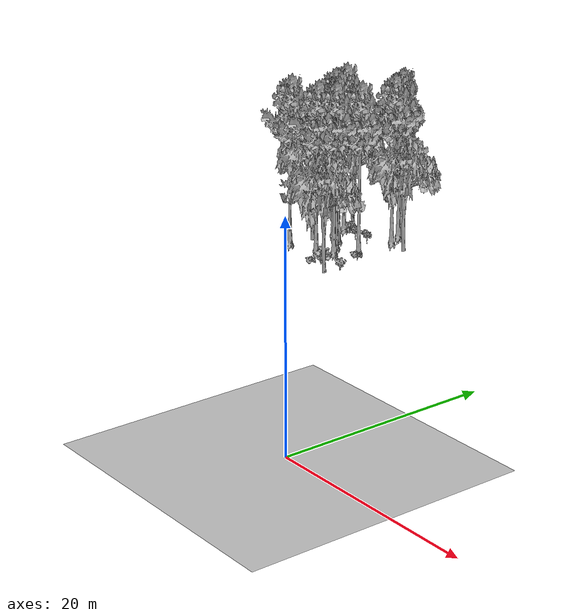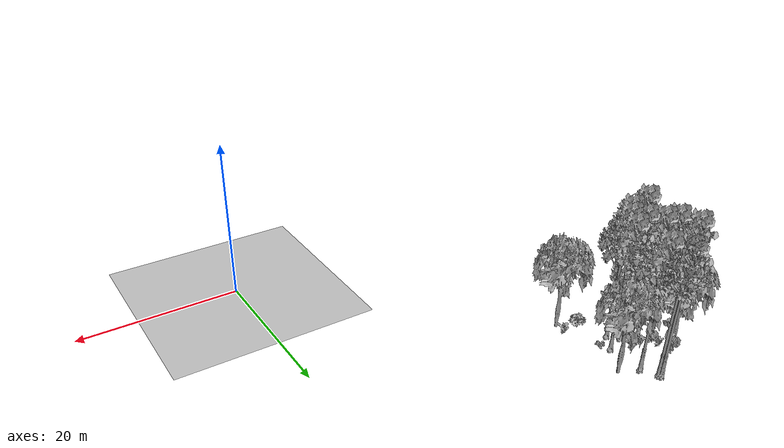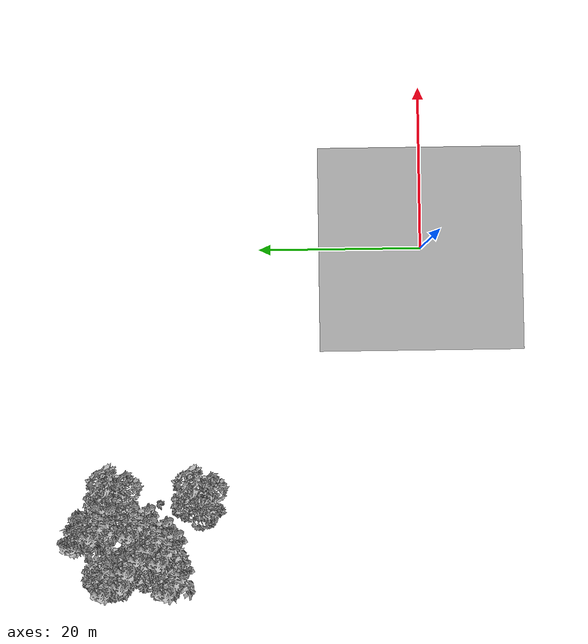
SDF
<sdf version="1.7">
 <world name="default">
  <model name="ground_plane">
   <static>1</static>
   <link name="link">
    <collision name="collision">
     <pose>-50 0 0 0 -0 0</pose>
     <geometry><plane><normal>0 0 1</normal><size>80 80</size></plane></geometry>
     <surface><contact><ode><min_depth>0.01</min_depth><max_vel>0</max_vel></ode></contact></surface>
    </collision>
    <visual name="grass">
     <cast_shadows>0</cast_shadows>
     <geometry>
      <mesh>
       <scale>0.46714285714285714 0.46714285714285714 0.1</scale>
       <uri>file://grass_plane/meshes/grass_plane.dae</uri>
      </mesh>
     </geometry>
    </visual>
   </link>
  </model>
  <model name="Tree 15">
   <static>1</static>
   <pose>-29.18727145450593 37.06030403301507 0 1.57079 -0 0</pose>
   <link name="link">
    <collision name="collision">
     <geometry><mesh><scale>3.5 5 3.5</scale><uri>model://tree_2/meshes/tree_2.obj</uri></mesh></geometry>
    </collision>
    <visual name="visual">
     <geometry><mesh><scale>3.5 5 3.5</scale><uri>model://tree_2/meshes/tree_2.obj</uri></mesh></geometry>
    </visual>
   </link>
  </model>
  <model name="Tree 34">
   <static>1</static>
   <pose>-31.845774935375328 37.84250717310778 0 1.57079 -0 0</pose>
   <link name="link">
    <collision name="collision">
     <geometry><mesh><scale>3.5 5 3.5</scale><uri>model://tree_9/meshes/tree_9.obj</uri></mesh></geometry>
    </collision>
    <visual name="visual">
     <geometry><mesh><scale>3.5 5 3.5</scale><uri>model://tree_9/meshes/tree_9.obj</uri></mesh></geometry>
    </visual>
   </link>
  </model>
  <model name="Tree 67">
   <static>1</static>
   <pose>-37.96963802142846 36.58170757064079 0 1.57079 -0 0</pose>
   <link name="link">
    <collision name="collision">
     <geometry><mesh><scale>3.5 5 3.5</scale><uri>model://tree_9/meshes/tree_9.obj</uri></mesh></geometry>
    </collision>
    <visual name="visual">
     <geometry><mesh><scale>3.5 5 3.5</scale><uri>model://tree_9/meshes/tree_9.obj</uri></mesh></geometry>
    </visual>
   </link>
  </model>
  <model name="Tree 78">
   <static>1</static>
   <pose>-32.82519353053983 39.56627003219057 0 1.57079 -0 0</pose>
   <link name="link">
    <collision name="collision">
     <geometry><mesh><scale>3.5 5 3.5</scale><uri>model://tree_9/meshes/tree_9.obj</uri></mesh></geometry>
    </collision>
    <visual name="visual">
     <geometry><mesh><scale>3.5 5 3.5</scale><uri>model://tree_9/meshes/tree_9.obj</uri></mesh></geometry>
    </visual>
   </link>
  </model>
  <model name="Tree 138">
   <static>1</static>
   <pose>-34.687755028416035 30.325690237389253 0 1.57079 -0 0</pose>
   <link name="link">
    <collision name="collision">
     <geometry><mesh><scale>3.5 5 3.5</scale><uri>model://tree_9/meshes/tree_9.obj</uri></mesh></geometry>
    </collision>
    <visual name="visual">
     <geometry><mesh><scale>3.5 5 3.5</scale><uri>model://tree_9/meshes/tree_9.obj</uri></mesh></geometry>
    </visual>
   </link>
  </model>
  <model name="Tree 314">
   <static>1</static>
   <pose>-31.813547017290944 33.48189356299915 0 1.57079 -0 0</pose>
   <link name="link">
    <collision name="collision">
     <geometry><mesh><scale>3.5 5 3.5</scale><uri>model://tree_9/meshes/tree_9.obj</uri></mesh></geometry>
    </collision>
    <visual name="visual">
     <geometry><mesh><scale>3.5 5 3.5</scale><uri>model://tree_9/meshes/tree_9.obj</uri></mesh></geometry>
    </visual>
   </link>
  </model>
  <model name="Tree 325">
   <static>1</static>
   <pose>-35.629269716959236 33.941760677405995 0 1.57079 -0 0</pose>
   <link name="link">
    <collision name="collision">
     <geometry><mesh><scale>3.5 5 3.5</scale><uri>model://tree_9/meshes/tree_9.obj</uri></mesh></geometry>
    </collision>
    <visual name="visual">
     <geometry><mesh><scale>3.5 5 3.5</scale><uri>model://tree_9/meshes/tree_9.obj</uri></mesh></geometry>
    </visual>
   </link>
  </model>
  <model name="Tree 348">
   <static>1</static>
   <pose>-32.919511570683575 39.882993122550275 0 1.57079 -0 0</pose>
   <link name="link">
    <collision name="collision">
     <geometry><mesh><scale>3.5 5 3.5</scale><uri>model://tree_9/meshes/tree_9.obj</uri></mesh></geometry>
    </collision>
    <visual name="visual">
     <geometry><mesh><scale>3.5 5 3.5</scale><uri>model://tree_9/meshes/tree_9.obj</uri></mesh></geometry>
    </visual>
   </link>
  </model>
  <model name="Tree 350">
   <static>1</static>
   <pose>-37.47328047914225 37.27868716203611 0 1.57079 -0 0</pose>
   <link name="link">
    <collision name="collision">
     <geometry><mesh><scale>3.5 5 3.5</scale><uri>model://tree_2/meshes/tree_2.obj</uri></mesh></geometry>
    </collision>
    <visual name="visual">
     <geometry><mesh><scale>3.5 5 3.5</scale><uri>model://tree_2/meshes/tree_2.obj</uri></mesh></geometry>
    </visual>
   </link>
  </model>
  <model name="Tree 369">
   <static>1</static>
   <pose>-29.397579302423452 27.05882313676156 0 1.57079 -0 0</pose>
   <link name="link">
    <collision name="collision">
     <geometry><mesh><scale>3.5 5 3.5</scale><uri>model://tree_2/meshes/tree_2.obj</uri></mesh></geometry>
    </collision>
    <visual name="visual">
     <geometry><mesh><scale>3.5 5 3.5</scale><uri>model://tree_2/meshes/tree_2.obj</uri></mesh></geometry>
    </visual>
   </link>
  </model>
  <model name="Tree 439">
   <static>1</static>
   <pose>-37.32561484584331 31.86373805461909 0 1.57079 -0 0</pose>
   <link name="link">
    <collision name="collision">
     <geometry><mesh><scale>3.5 5 3.5</scale><uri>model://tree_2/meshes/tree_2.obj</uri></mesh></geometry>
    </collision>
    <visual name="visual">
     <geometry><mesh><scale>3.5 5 3.5</scale><uri>model://tree_2/meshes/tree_2.obj</uri></mesh></geometry>
    </visual>
   </link>
  </model>
  <model name="Tree 451">
   <static>1</static>
   <pose>-33.26684925574821 31.47468653472798 0 1.57079 -0 0</pose>
   <link name="link">
    <collision name="collision">
     <geometry><mesh><scale>3.5 5 3.5</scale><uri>model://tree_9/meshes/tree_9.obj</uri></mesh></geometry>
    </collision>
    <visual name="visual">
     <geometry><mesh><scale>3.5 5 3.5</scale><uri>model://tree_9/meshes/tree_9.obj</uri></mesh></geometry>
    </visual>
   </link>
  </model>
  <model name="Tree 471">
   <static>1</static>
   <pose>-38.01320945235448 29.55349008753403 0 1.57079 -0 0</pose>
   <link name="link">
    <collision name="collision">
     <geometry><mesh><scale>3.5 5 3.5</scale><uri>model://tree_9/meshes/tree_9.obj</uri></mesh></geometry>
    </collision>
    <visual name="visual">
     <geometry><mesh><scale>3.5 5 3.5</scale><uri>model://tree_9/meshes/tree_9.obj</uri></mesh></geometry>
    </visual>
   </link>
  </model>
  <model name="Tree 514">
   <static>1</static>
   <pose>-37.171031739866464 34.50093176153614 0 1.57079 -0 0</pose>
   <link name="link">
    <collision name="collision">
     <geometry><mesh><scale>3.5 5 3.5</scale><uri>model://tree_9/meshes/tree_9.obj</uri></mesh></geometry>
    </collision>
    <visual name="visual">
     <geometry><mesh><scale>3.5 5 3.5</scale><uri>model://tree_9/meshes/tree_9.obj</uri></mesh></geometry>
    </visual>
   </link>
  </model>
  <model name="Tree 553">
   <static>1</static>
   <pose>-34.30485718975455 32.60248827692541 0 1.57079 -0 0</pose>
   <link name="link">
    <collision name="collision">
     <geometry><mesh><scale>3.5 5 3.5</scale><uri>model://tree_9/meshes/tree_9.obj</uri></mesh></geometry>
    </collision>
    <visual name="visual">
     <geometry><mesh><scale>3.5 5 3.5</scale><uri>model://tree_9/meshes/tree_9.obj</uri></mesh></geometry>
    </visual>
   </link>
  </model>
  <model name="Bush 92">
   <static>1</static>
   <pose>-28.814898989446448 28.698310965496432 0 1.57079 -0 0</pose>
   <link name="link">
    <collision name="collision">
     <geometry><mesh><scale>2 2 2</scale><uri>model://bush_0/meshes/bush_0.obj</uri></mesh></geometry>
     <surface><contact><collide_without_contact>false</collide_without_contact></contact></surface>
    </collision>
    <visual name="visual">
     <geometry><mesh><scale>2 2 2</scale><uri>model://bush_0/meshes/bush_0.obj</uri></mesh></geometry>
    </visual>
   </link>
  </model>
  <model name="Bush 159">
   <static>1</static>
   <pose>-36.47252895946376 36.09465768641297 0 1.57079 -0 0</pose>
   <link name="link">
    <collision name="collision">
     <geometry><mesh><scale>2 2 2</scale><uri>model://bush_4/meshes/bush_4.obj</uri></mesh></geometry>
     <surface><contact><collide_without_contact>false</collide_without_contact></contact></surface>
    </collision>
    <visual name="visual">
     <geometry><mesh><scale>2 2 2</scale><uri>model://bush_4/meshes/bush_4.obj</uri></mesh></geometry>
    </visual>
   </link>
  </model>
  <model name="Bush 169">
   <static>1</static>
   <pose>-34.46975607714318 35.30119270956115 0 1.57079 -0 0</pose>
   <link name="link">
    <collision name="collision">
     <geometry><mesh><scale>2 2 2</scale><uri>model://bush_5/meshes/bush_5.obj</uri></mesh></geometry>
     <surface><contact><collide_without_contact>false</collide_without_contact></contact></surface>
    </collision>
    <visual name="visual">
     <geometry><mesh><scale>2 2 2</scale><uri>model://bush_5/meshes/bush_5.obj</uri></mesh></geometry>
    </visual>
   </link>
  </model>
  <model name="Bush 200">
   <static>1</static>
   <pose>-32.844604983190386 35.48189141970883 0 1.57079 -0 0</pose>
   <link name="link">
    <collision name="collision">
     <geometry><mesh><scale>2 2 2</scale><uri>model://bush_5/meshes/bush_5.obj</uri></mesh></geometry>
     <surface><contact><collide_without_contact>false</collide_without_contact></contact></surface>
    </collision>
    <visual name="visual">
     <geometry><mesh><scale>2 2 2</scale><uri>model://bush_5/meshes/bush_5.obj</uri></mesh></geometry>
    </visual>
   </link>
  </model>
  <model name="Bush 387">
   <static>1</static>
   <pose>-31.235312042076746 28.2208148368438 0 1.57079 -0 0</pose>
   <link name="link">
    <collision name="collision">
     <geometry><mesh><scale>2 2 2</scale><uri>model://bush_1/meshes/bush_1.obj</uri></mesh></geometry>
     <surface><contact><collide_without_contact>false</collide_without_contact></contact></surface>
    </collision>
    <visual name="visual">
     <geometry><mesh><scale>2 2 2</scale><uri>model://bush_1/meshes/bush_1.obj</uri></mesh></geometry>
    </visual>
   </link>
  </model>
  <model name="Bush 488">
   <static>1</static>
   <pose>-37.18233910791271 37.24049515389977 0 1.57079 -0 0</pose>
   <link name="link">
    <collision name="collision">
     <geometry><mesh><scale>2 2 2</scale><uri>model://bush_2/meshes/bush_2.obj</uri></mesh></geometry>
     <surface><contact><collide_without_contact>false</collide_without_contact></contact></surface>
    </collision>
    <visual name="visual">
     <geometry><mesh><scale>2 2 2</scale><uri>model://bush_2/meshes/bush_2.obj</uri></mesh></geometry>
    </visual>
   </link>
  </model>
  <model name="Bush 511">
   <static>1</static>
   <pose>-31.137920804701956 32.45553597319655 0 1.57079 -0 0</pose>
   <link name="link">
    <collision name="collision">
     <geometry><mesh><scale>2 2 2</scale><uri>model://bush_2/meshes/bush_2.obj</uri></mesh></geometry>
     <surface><contact><collide_without_contact>false</collide_without_contact></contact></surface>
    </collision>
    <visual name="visual">
     <geometry><mesh><scale>2 2 2</scale><uri>model://bush_2/meshes/bush_2.obj</uri></mesh></geometry>
    </visual>
   </link>
  </model>
  <model name="Bush 602">
   <static>1</static>
   <pose>-32.65239513287615 27.961618203761446 0 1.57079 -0 0</pose>
   <link name="link">
    <collision name="collision">
     <geometry><mesh><scale>2 2 2</scale><uri>model://bush_2/meshes/bush_2.obj</uri></mesh></geometry>
     <surface><contact><collide_without_contact>false</collide_without_contact></contact></surface>
    </collision>
    <visual name="visual">
     <geometry><mesh><scale>2 2 2</scale><uri>model://bush_2/meshes/bush_2.obj</uri></mesh></geometry>
    </visual>
   </link>
  </model>
 </world>
</sdf>
